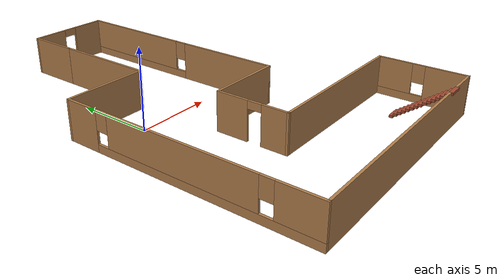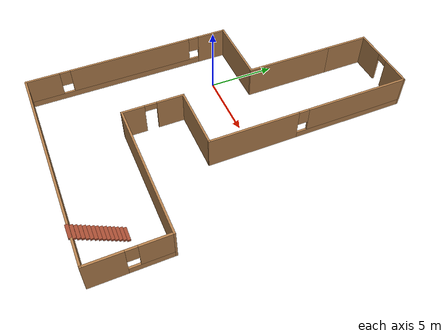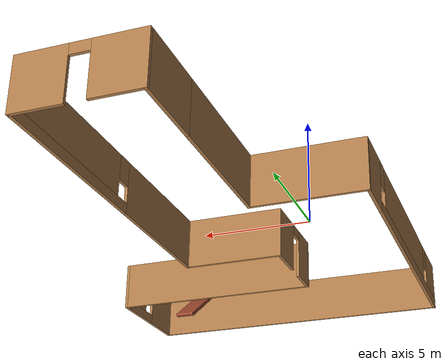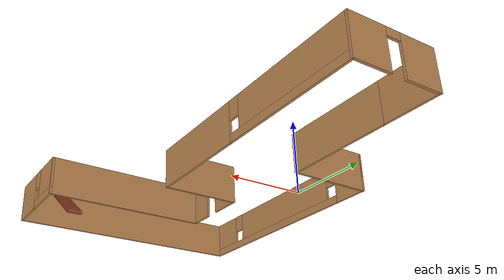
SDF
<?xml version='1.0'?>
<sdf version='1.7'>
  <model name='wip_house.world'>
    <pose>4.96456 -0.72838 0 0 -0 0</pose>
    <link name='Stairs_0'>
      <visual name='Stairs_0_Visual_0'>
        <pose>5.63864 -9.63602 0.083333 0 -0 0</pose>
        <geometry>
          <box>
            <size>1 0.233333 0.166667</size>
          </box>
        </geometry>
        <material>
          <script>
            <uri>file://media/materials/scripts/gazebo.material</uri>
            <name>Gazebo/Bricks</name>
          </script>
          <ambient>1 1 1 1</ambient>
        </material>
        <meta>
          <layer>0</layer>
        </meta>
      </visual>
      <collision name='Stairs_0_Collision_0'>
        <geometry>
          <box>
            <size>1 0.233333 0.166667</size>
          </box>
        </geometry>
        <pose>5.63864 -9.63602 0.083333 0 -0 0</pose>
      </collision>
      <visual name='Stairs_0_Visual_1'>
        <pose>5.63864 -9.86935 0.25 0 -0 0</pose>
        <geometry>
          <box>
            <size>1 0.233333 0.166667</size>
          </box>
        </geometry>
        <material>
          <script>
            <uri>file://media/materials/scripts/gazebo.material</uri>
            <name>Gazebo/Bricks</name>
          </script>
          <ambient>1 1 1 1</ambient>
        </material>
        <meta>
          <layer>0</layer>
        </meta>
      </visual>
      <collision name='Stairs_0_Collision_1'>
        <geometry>
          <box>
            <size>1 0.233333 0.166667</size>
          </box>
        </geometry>
        <pose>5.63864 -9.86935 0.25 0 -0 0</pose>
      </collision>
      <visual name='Stairs_0_Visual_2'>
        <pose>5.63864 -10.1027 0.416667 0 -0 0</pose>
        <geometry>
          <box>
            <size>1 0.233333 0.166667</size>
          </box>
        </geometry>
        <material>
          <script>
            <uri>file://media/materials/scripts/gazebo.material</uri>
            <name>Gazebo/Bricks</name>
          </script>
          <ambient>1 1 1 1</ambient>
        </material>
        <meta>
          <layer>0</layer>
        </meta>
      </visual>
      <collision name='Stairs_0_Collision_2'>
        <geometry>
          <box>
            <size>1 0.233333 0.166667</size>
          </box>
        </geometry>
        <pose>5.63864 -10.1027 0.416667 0 -0 0</pose>
      </collision>
      <visual name='Stairs_0_Visual_3'>
        <pose>5.63864 -10.336 0.583333 0 -0 0</pose>
        <geometry>
          <box>
            <size>1 0.233333 0.166667</size>
          </box>
        </geometry>
        <material>
          <script>
            <uri>file://media/materials/scripts/gazebo.material</uri>
            <name>Gazebo/Bricks</name>
          </script>
          <ambient>1 1 1 1</ambient>
        </material>
        <meta>
          <layer>0</layer>
        </meta>
      </visual>
      <collision name='Stairs_0_Collision_3'>
        <geometry>
          <box>
            <size>1 0.233333 0.166667</size>
          </box>
        </geometry>
        <pose>5.63864 -10.336 0.583333 0 -0 0</pose>
      </collision>
      <visual name='Stairs_0_Visual_4'>
        <pose>5.63864 -10.5694 0.75 0 -0 0</pose>
        <geometry>
          <box>
            <size>1 0.233333 0.166667</size>
          </box>
        </geometry>
        <material>
          <script>
            <uri>file://media/materials/scripts/gazebo.material</uri>
            <name>Gazebo/Bricks</name>
          </script>
          <ambient>1 1 1 1</ambient>
        </material>
        <meta>
          <layer>0</layer>
        </meta>
      </visual>
      <collision name='Stairs_0_Collision_4'>
        <geometry>
          <box>
            <size>1 0.233333 0.166667</size>
          </box>
        </geometry>
        <pose>5.63864 -10.5694 0.75 0 -0 0</pose>
      </collision>
      <visual name='Stairs_0_Visual_5'>
        <pose>5.63864 -10.8027 0.916667 0 -0 0</pose>
        <geometry>
          <box>
            <size>1 0.233333 0.166667</size>
          </box>
        </geometry>
        <material>
          <script>
            <uri>file://media/materials/scripts/gazebo.material</uri>
            <name>Gazebo/Bricks</name>
          </script>
          <ambient>1 1 1 1</ambient>
        </material>
        <meta>
          <layer>0</layer>
        </meta>
      </visual>
      <collision name='Stairs_0_Collision_5'>
        <geometry>
          <box>
            <size>1 0.233333 0.166667</size>
          </box>
        </geometry>
        <pose>5.63864 -10.8027 0.916667 0 -0 0</pose>
      </collision>
      <visual name='Stairs_0_Visual_6'>
        <pose>5.63864 -11.036 1.08333 0 -0 0</pose>
        <geometry>
          <box>
            <size>1 0.233333 0.166667</size>
          </box>
        </geometry>
        <material>
          <script>
            <uri>file://media/materials/scripts/gazebo.material</uri>
            <name>Gazebo/Bricks</name>
          </script>
          <ambient>1 1 1 1</ambient>
        </material>
        <meta>
          <layer>0</layer>
        </meta>
      </visual>
      <collision name='Stairs_0_Collision_6'>
        <geometry>
          <box>
            <size>1 0.233333 0.166667</size>
          </box>
        </geometry>
        <pose>5.63864 -11.036 1.08333 0 -0 0</pose>
      </collision>
      <visual name='Stairs_0_Visual_7'>
        <pose>5.63864 -11.2694 1.25 0 -0 0</pose>
        <geometry>
          <box>
            <size>1 0.233333 0.166667</size>
          </box>
        </geometry>
        <material>
          <script>
            <uri>file://media/materials/scripts/gazebo.material</uri>
            <name>Gazebo/Bricks</name>
          </script>
          <ambient>1 1 1 1</ambient>
        </material>
        <meta>
          <layer>0</layer>
        </meta>
      </visual>
      <collision name='Stairs_0_Collision_7'>
        <geometry>
          <box>
            <size>1 0.233333 0.166667</size>
          </box>
        </geometry>
        <pose>5.63864 -11.2694 1.25 0 -0 0</pose>
      </collision>
      <visual name='Stairs_0_Visual_8'>
        <pose>5.63864 -11.5027 1.41667 0 -0 0</pose>
        <geometry>
          <box>
            <size>1 0.233333 0.166667</size>
          </box>
        </geometry>
        <material>
          <script>
            <uri>file://media/materials/scripts/gazebo.material</uri>
            <name>Gazebo/Bricks</name>
          </script>
          <ambient>1 1 1 1</ambient>
        </material>
        <meta>
          <layer>0</layer>
        </meta>
      </visual>
      <collision name='Stairs_0_Collision_8'>
        <geometry>
          <box>
            <size>1 0.233333 0.166667</size>
          </box>
        </geometry>
        <pose>5.63864 -11.5027 1.41667 0 -0 0</pose>
      </collision>
      <visual name='Stairs_0_Visual_9'>
        <pose>5.63864 -11.736 1.58333 0 -0 0</pose>
        <geometry>
          <box>
            <size>1 0.233333 0.166667</size>
          </box>
        </geometry>
        <material>
          <script>
            <uri>file://media/materials/scripts/gazebo.material</uri>
            <name>Gazebo/Bricks</name>
          </script>
          <ambient>1 1 1 1</ambient>
        </material>
        <meta>
          <layer>0</layer>
        </meta>
      </visual>
      <collision name='Stairs_0_Collision_9'>
        <geometry>
          <box>
            <size>1 0.233333 0.166667</size>
          </box>
        </geometry>
        <pose>5.63864 -11.736 1.58333 0 -0 0</pose>
      </collision>
      <visual name='Stairs_0_Visual_10'>
        <pose>5.63864 -11.9694 1.75 0 -0 0</pose>
        <geometry>
          <box>
            <size>1 0.233333 0.166667</size>
          </box>
        </geometry>
        <material>
          <script>
            <uri>file://media/materials/scripts/gazebo.material</uri>
            <name>Gazebo/Bricks</name>
          </script>
          <ambient>1 1 1 1</ambient>
        </material>
        <meta>
          <layer>0</layer>
        </meta>
      </visual>
      <collision name='Stairs_0_Collision_10'>
        <geometry>
          <box>
            <size>1 0.233333 0.166667</size>
          </box>
        </geometry>
        <pose>5.63864 -11.9694 1.75 0 -0 0</pose>
      </collision>
      <visual name='Stairs_0_Visual_11'>
        <pose>5.63864 -12.2027 1.91667 0 -0 0</pose>
        <geometry>
          <box>
            <size>1 0.233333 0.166667</size>
          </box>
        </geometry>
        <material>
          <script>
            <uri>file://media/materials/scripts/gazebo.material</uri>
            <name>Gazebo/Bricks</name>
          </script>
          <ambient>1 1 1 1</ambient>
        </material>
        <meta>
          <layer>0</layer>
        </meta>
      </visual>
      <collision name='Stairs_0_Collision_11'>
        <geometry>
          <box>
            <size>1 0.233333 0.166667</size>
          </box>
        </geometry>
        <pose>5.63864 -12.2027 1.91667 0 -0 0</pose>
      </collision>
      <visual name='Stairs_0_Visual_12'>
        <pose>5.63864 -12.436 2.08333 0 -0 0</pose>
        <geometry>
          <box>
            <size>1 0.233333 0.166667</size>
          </box>
        </geometry>
        <material>
          <script>
            <uri>file://media/materials/scripts/gazebo.material</uri>
            <name>Gazebo/Bricks</name>
          </script>
          <ambient>1 1 1 1</ambient>
        </material>
        <meta>
          <layer>0</layer>
        </meta>
      </visual>
      <collision name='Stairs_0_Collision_12'>
        <geometry>
          <box>
            <size>1 0.233333 0.166667</size>
          </box>
        </geometry>
        <pose>5.63864 -12.436 2.08333 0 -0 0</pose>
      </collision>
      <visual name='Stairs_0_Visual_13'>
        <pose>5.63864 -12.6694 2.25 0 -0 0</pose>
        <geometry>
          <box>
            <size>1 0.233333 0.166667</size>
          </box>
        </geometry>
        <material>
          <script>
            <uri>file://media/materials/scripts/gazebo.material</uri>
            <name>Gazebo/Bricks</name>
          </script>
          <ambient>1 1 1 1</ambient>
        </material>
        <meta>
          <layer>0</layer>
        </meta>
      </visual>
      <collision name='Stairs_0_Collision_13'>
        <geometry>
          <box>
            <size>1 0.233333 0.166667</size>
          </box>
        </geometry>
        <pose>5.63864 -12.6694 2.25 0 -0 0</pose>
      </collision>
      <visual name='Stairs_0_Visual_14'>
        <pose>5.63864 -12.9027 2.41667 0 -0 0</pose>
        <geometry>
          <box>
            <size>1 0.233333 0.166667</size>
          </box>
        </geometry>
        <material>
          <script>
            <uri>file://media/materials/scripts/gazebo.material</uri>
            <name>Gazebo/Bricks</name>
          </script>
          <ambient>1 1 1 1</ambient>
        </material>
        <meta>
          <layer>0</layer>
        </meta>
      </visual>
      <collision name='Stairs_0_Collision_14'>
        <geometry>
          <box>
            <size>1 0.233333 0.166667</size>
          </box>
        </geometry>
        <pose>5.63864 -12.9027 2.41667 0 -0 0</pose>
      </collision>
    </link>
    <link name='Wall_11'>
      <pose>-8.175 -4.93065 0 0 -0 -1.5708</pose>
      <visual name='Wall_11_Visual_0'>
        <pose>-6.85483 0 1.25 0 -0 0</pose>
        <geometry>
          <box>
            <size>2.29034 0.15 2.5</size>
          </box>
        </geometry>
        <material>
          <script>
            <uri>file://media/materials/scripts/gazebo.material</uri>
            <name>Gazebo/Wood</name>
          </script>
          <ambient>1 1 1 1</ambient>
        </material>
        <meta>
          <layer>0</layer>
        </meta>
      </visual>
      <collision name='Wall_11_Collision_0'>
        <geometry>
          <box>
            <size>2.29034 0.15 2.5</size>
          </box>
        </geometry>
        <pose>-6.85483 0 1.25 0 -0 0</pose>
      </collision>
      <visual name='Wall_11_Visual_1'>
        <pose>1.14517 0 0.25 0 -0 0</pose>
        <geometry>
          <box>
            <size>13.7097 0.15 0.5</size>
          </box>
        </geometry>
        <material>
          <script>
            <uri>file://media/materials/scripts/gazebo.material</uri>
            <name>Gazebo/Wood</name>
          </script>
          <ambient>1 1 1 1</ambient>
        </material>
        <meta>
          <layer>0</layer>
        </meta>
      </visual>
      <collision name='Wall_11_Collision_1'>
        <geometry>
          <box>
            <size>13.7097 0.15 0.5</size>
          </box>
        </geometry>
        <pose>1.14517 0 0.25 0 -0 0</pose>
      </collision>
      <visual name='Wall_11_Visual_2'>
        <pose>-0.144391 0 1.5 0 -0 0</pose>
        <geometry>
          <box>
            <size>9.53053 0.15 2</size>
          </box>
        </geometry>
        <material>
          <script>
            <uri>file://media/materials/scripts/gazebo.material</uri>
            <name>Gazebo/Wood</name>
          </script>
          <ambient>1 1 1 1</ambient>
        </material>
        <meta>
          <layer>0</layer>
        </meta>
      </visual>
      <collision name='Wall_11_Collision_2'>
        <geometry>
          <box>
            <size>9.53053 0.15 2</size>
          </box>
        </geometry>
        <pose>-0.144391 0 1.5 0 -0 0</pose>
      </collision>
      <visual name='Wall_11_Visual_3'>
        <pose>6.71044 0 1.5 0 -0 0</pose>
        <geometry>
          <box>
            <size>2.57912 0.15 2</size>
          </box>
        </geometry>
        <material>
          <script>
            <uri>file://media/materials/scripts/gazebo.material</uri>
            <name>Gazebo/Wood</name>
          </script>
          <ambient>1 1 1 1</ambient>
        </material>
        <meta>
          <layer>0</layer>
        </meta>
      </visual>
      <collision name='Wall_11_Collision_3'>
        <geometry>
          <box>
            <size>2.57912 0.15 2</size>
          </box>
        </geometry>
        <pose>6.71044 0 1.5 0 -0 0</pose>
      </collision>
      <visual name='Wall_11_Visual_4'>
        <pose>-5.30966 0 1.9 0 -0 0</pose>
        <geometry>
          <box>
            <size>0.8 0.15 1.2</size>
          </box>
        </geometry>
        <material>
          <script>
            <uri>file://media/materials/scripts/gazebo.material</uri>
            <name>Gazebo/Wood</name>
          </script>
          <ambient>1 1 1 1</ambient>
        </material>
        <meta>
          <layer>0</layer>
        </meta>
      </visual>
      <collision name='Wall_11_Collision_4'>
        <geometry>
          <box>
            <size>0.8 0.15 1.2</size>
          </box>
        </geometry>
        <pose>-5.30966 0 1.9 0 -0 0</pose>
      </collision>
      <visual name='Wall_11_Visual_5'>
        <pose>5.02088 0 1.9 0 -0 0</pose>
        <geometry>
          <box>
            <size>0.8 0.15 1.2</size>
          </box>
        </geometry>
        <material>
          <script>
            <uri>file://media/materials/scripts/gazebo.material</uri>
            <name>Gazebo/Wood</name>
          </script>
          <ambient>1 1 1 1</ambient>
        </material>
        <meta>
          <layer>0</layer>
        </meta>
      </visual>
      <collision name='Wall_11_Collision_5'>
        <geometry>
          <box>
            <size>0.8 0.15 1.2</size>
          </box>
        </geometry>
        <pose>5.02088 0 1.9 0 -0 0</pose>
      </collision>
    </link>
    <link name='Wall_13'>
      <collision name='Wall_13_Collision'>
        <geometry>
          <box>
            <size>16.5 0.15 2.5</size>
          </box>
        </geometry>
        <pose>0 0 1.25 0 -0 0</pose>
      </collision>
      <visual name='Wall_13_Visual'>
        <pose>0 0 1.25 0 -0 0</pose>
        <geometry>
          <box>
            <size>16.5 0.15 2.5</size>
          </box>
        </geometry>
        <material>
          <script>
            <uri>file://media/materials/scripts/gazebo.material</uri>
            <name>Gazebo/Wood</name>
          </script>
          <ambient>1 1 1 1</ambient>
        </material>
        <meta>
          <layer>0</layer>
        </meta>
      </visual>
      <pose>0 -12.8556 0 0 -0 0</pose>
    </link>
    <link name='Wall_14'>
      <pose>8.175 -10.0556 0 0 -0 1.5708</pose>
      <visual name='Wall_14_Visual_0'>
        <pose>-1.55006 0 1.25 0 -0 0</pose>
        <geometry>
          <box>
            <size>2.64988 0.15 2.5</size>
          </box>
        </geometry>
        <material>
          <script>
            <uri>file://media/materials/scripts/gazebo.material</uri>
            <name>Gazebo/Wood</name>
          </script>
          <ambient>1 1 1 1</ambient>
        </material>
        <meta>
          <layer>0</layer>
        </meta>
      </visual>
      <collision name='Wall_14_Collision_0'>
        <geometry>
          <box>
            <size>2.64988 0.15 2.5</size>
          </box>
        </geometry>
        <pose>-1.55006 0 1.25 0 -0 0</pose>
      </collision>
      <visual name='Wall_14_Visual_1'>
        <pose>1.32494 0 0.25 0 -0 0</pose>
        <geometry>
          <box>
            <size>3.10012 0.15 0.5</size>
          </box>
        </geometry>
        <material>
          <script>
            <uri>file://media/materials/scripts/gazebo.material</uri>
            <name>Gazebo/Wood</name>
          </script>
          <ambient>1 1 1 1</ambient>
        </material>
        <meta>
          <layer>0</layer>
        </meta>
      </visual>
      <collision name='Wall_14_Collision_1'>
        <geometry>
          <box>
            <size>3.10012 0.15 0.5</size>
          </box>
        </geometry>
        <pose>1.32494 0 0.25 0 -0 0</pose>
      </collision>
      <visual name='Wall_14_Visual_2'>
        <pose>1.72494 0 1.5 0 -0 0</pose>
        <geometry>
          <box>
            <size>2.30012 0.15 2</size>
          </box>
        </geometry>
        <material>
          <script>
            <uri>file://media/materials/scripts/gazebo.material</uri>
            <name>Gazebo/Wood</name>
          </script>
          <ambient>1 1 1 1</ambient>
        </material>
        <meta>
          <layer>0</layer>
        </meta>
      </visual>
      <collision name='Wall_14_Collision_2'>
        <geometry>
          <box>
            <size>2.30012 0.15 2</size>
          </box>
        </geometry>
        <pose>1.72494 0 1.5 0 -0 0</pose>
      </collision>
      <visual name='Wall_14_Visual_3'>
        <pose>0.174883 0 1.9 0 -0 0</pose>
        <geometry>
          <box>
            <size>0.8 0.15 1.2</size>
          </box>
        </geometry>
        <material>
          <script>
            <uri>file://media/materials/scripts/gazebo.material</uri>
            <name>Gazebo/Wood</name>
          </script>
          <ambient>1 1 1 1</ambient>
        </material>
        <meta>
          <layer>0</layer>
        </meta>
      </visual>
      <collision name='Wall_14_Collision_3'>
        <geometry>
          <box>
            <size>0.8 0.15 1.2</size>
          </box>
        </geometry>
        <pose>0.174883 0 1.9 0 -0 0</pose>
      </collision>
    </link>
    <link name='Wall_15'>
      <collision name='Wall_15_Collision'>
        <geometry>
          <box>
            <size>10.75 0.15 2.5</size>
          </box>
        </geometry>
        <pose>0 0 1.25 0 -0 0</pose>
      </collision>
      <visual name='Wall_15_Visual'>
        <pose>0 0 1.25 0 -0 0</pose>
        <geometry>
          <box>
            <size>10.75 0.15 2.5</size>
          </box>
        </geometry>
        <material>
          <script>
            <uri>file://media/materials/scripts/gazebo.material</uri>
            <name>Gazebo/Wood</name>
          </script>
          <ambient>1 1 1 1</ambient>
        </material>
        <meta>
          <layer>0</layer>
        </meta>
      </visual>
      <pose>2.875 -7.25565 0 0 -0 3.14159</pose>
    </link>
    <link name='Wall_16'>
      <pose>-2.425 -4.95565 0 0 -0 1.5708</pose>
      <visual name='Wall_16_Visual_0'>
        <pose>-1.50448 0 1.25 0 -0 0</pose>
        <geometry>
          <box>
            <size>1.74105 0.15 2.5</size>
          </box>
        </geometry>
        <material>
          <script>
            <uri>file://media/materials/scripts/gazebo.material</uri>
            <name>Gazebo/Wood</name>
          </script>
          <ambient>1 1 1 1</ambient>
        </material>
        <meta>
          <layer>0</layer>
        </meta>
      </visual>
      <collision name='Wall_16_Collision_0'>
        <geometry>
          <box>
            <size>1.74105 0.15 2.5</size>
          </box>
        </geometry>
        <pose>-1.50448 0 1.25 0 -0 0</pose>
      </collision>
      <visual name='Wall_16_Visual_1'>
        <pose>1.32052 0 1.25 0 -0 0</pose>
        <geometry>
          <box>
            <size>2.10895 0.15 2.5</size>
          </box>
        </geometry>
        <material>
          <script>
            <uri>file://media/materials/scripts/gazebo.material</uri>
            <name>Gazebo/Wood</name>
          </script>
          <ambient>1 1 1 1</ambient>
        </material>
        <meta>
          <layer>0</layer>
        </meta>
      </visual>
      <collision name='Wall_16_Collision_1'>
        <geometry>
          <box>
            <size>2.10895 0.15 2.5</size>
          </box>
        </geometry>
        <pose>1.32052 0 1.25 0 -0 0</pose>
      </collision>
      <visual name='Wall_16_Visual_2'>
        <pose>-0.183949 0 2.25 0 -0 0</pose>
        <geometry>
          <box>
            <size>0.9 0.15 0.5</size>
          </box>
        </geometry>
        <material>
          <script>
            <uri>file://media/materials/scripts/gazebo.material</uri>
            <name>Gazebo/Wood</name>
          </script>
          <ambient>1 1 1 1</ambient>
        </material>
        <meta>
          <layer>0</layer>
        </meta>
      </visual>
      <collision name='Wall_16_Collision_2'>
        <geometry>
          <box>
            <size>0.9 0.15 0.5</size>
          </box>
        </geometry>
        <pose>-0.183949 0 2.25 0 -0 0</pose>
      </collision>
    </link>
    <link name='Wall_17'>
      <collision name='Wall_17_Collision'>
        <geometry>
          <box>
            <size>5 0.15 2.5</size>
          </box>
        </geometry>
        <pose>0 0 1.25 0 -0 0</pose>
      </collision>
      <visual name='Wall_17_Visual'>
        <pose>0 0 1.25 0 -0 0</pose>
        <geometry>
          <box>
            <size>5 0.15 2.5</size>
          </box>
        </geometry>
        <material>
          <script>
            <uri>file://media/materials/scripts/gazebo.material</uri>
            <name>Gazebo/Wood</name>
          </script>
          <ambient>1 1 1 1</ambient>
        </material>
        <meta>
          <layer>0</layer>
        </meta>
      </visual>
      <pose>0 -2.65565 0 0 -0 0</pose>
    </link>
    <link name='Wall_18'>
      <pose>2.425 5.14435 0 0 -0 1.5708</pose>
      <visual name='Wall_18_Visual_0'>
        <pose>-4.43284 0 1.25 0 -0 0</pose>
        <geometry>
          <box>
            <size>6.88432 0.15 2.5</size>
          </box>
        </geometry>
        <material>
          <script>
            <uri>file://media/materials/scripts/gazebo.material</uri>
            <name>Gazebo/Wood</name>
          </script>
          <ambient>1 1 1 1</ambient>
        </material>
        <meta>
          <layer>0</layer>
        </meta>
      </visual>
      <collision name='Wall_18_Collision_0'>
        <geometry>
          <box>
            <size>6.88432 0.15 2.5</size>
          </box>
        </geometry>
        <pose>-4.43284 0 1.25 0 -0 0</pose>
      </collision>
      <visual name='Wall_18_Visual_1'>
        <pose>3.44216 0 0.25 0 -0 0</pose>
        <geometry>
          <box>
            <size>8.86568 0.15 0.5</size>
          </box>
        </geometry>
        <material>
          <script>
            <uri>file://media/materials/scripts/gazebo.material</uri>
            <name>Gazebo/Wood</name>
          </script>
          <ambient>1 1 1 1</ambient>
        </material>
        <meta>
          <layer>0</layer>
        </meta>
      </visual>
      <collision name='Wall_18_Collision_1'>
        <geometry>
          <box>
            <size>8.86568 0.15 0.5</size>
          </box>
        </geometry>
        <pose>3.44216 0 0.25 0 -0 0</pose>
      </collision>
      <visual name='Wall_18_Visual_2'>
        <pose>3.84216 0 1.5 0 -0 0</pose>
        <geometry>
          <box>
            <size>8.06568 0.15 2</size>
          </box>
        </geometry>
        <material>
          <script>
            <uri>file://media/materials/scripts/gazebo.material</uri>
            <name>Gazebo/Wood</name>
          </script>
          <ambient>1 1 1 1</ambient>
        </material>
        <meta>
          <layer>0</layer>
        </meta>
      </visual>
      <collision name='Wall_18_Collision_2'>
        <geometry>
          <box>
            <size>8.06568 0.15 2</size>
          </box>
        </geometry>
        <pose>3.84216 0 1.5 0 -0 0</pose>
      </collision>
      <visual name='Wall_18_Visual_3'>
        <pose>-0.590678 0 1.9 0 -0 0</pose>
        <geometry>
          <box>
            <size>0.8 0.15 1.2</size>
          </box>
        </geometry>
        <material>
          <script>
            <uri>file://media/materials/scripts/gazebo.material</uri>
            <name>Gazebo/Wood</name>
          </script>
          <ambient>1 1 1 1</ambient>
        </material>
        <meta>
          <layer>0</layer>
        </meta>
      </visual>
      <collision name='Wall_18_Collision_3'>
        <geometry>
          <box>
            <size>0.8 0.15 1.2</size>
          </box>
        </geometry>
        <pose>-0.590678 0 1.9 0 -0 0</pose>
      </collision>
    </link>
    <link name='Wall_19'>
      <pose>-0.25 12.9444 0 0 -0 3.14159</pose>
      <visual name='Wall_19_Visual_0'>
        <pose>-1.59922 0 1.25 0 -0 0</pose>
        <geometry>
          <box>
            <size>2.30155 0.15 2.5</size>
          </box>
        </geometry>
        <material>
          <script>
            <uri>file://media/materials/scripts/gazebo.material</uri>
            <name>Gazebo/Wood</name>
          </script>
          <ambient>1 1 1 1</ambient>
        </material>
        <meta>
          <layer>0</layer>
        </meta>
      </visual>
      <collision name='Wall_19_Collision_0'>
        <geometry>
          <box>
            <size>2.30155 0.15 2.5</size>
          </box>
        </geometry>
        <pose>-1.59922 0 1.25 0 -0 0</pose>
      </collision>
      <visual name='Wall_19_Visual_1'>
        <pose>1.60078 0 1.25 0 -0 0</pose>
        <geometry>
          <box>
            <size>2.29845 0.15 2.5</size>
          </box>
        </geometry>
        <material>
          <script>
            <uri>file://media/materials/scripts/gazebo.material</uri>
            <name>Gazebo/Wood</name>
          </script>
          <ambient>1 1 1 1</ambient>
        </material>
        <meta>
          <layer>0</layer>
        </meta>
      </visual>
      <collision name='Wall_19_Collision_1'>
        <geometry>
          <box>
            <size>2.29845 0.15 2.5</size>
          </box>
        </geometry>
        <pose>1.60078 0 1.25 0 -0 0</pose>
      </collision>
      <visual name='Wall_19_Visual_2'>
        <pose>0.00155 0 2.25 0 -0 0</pose>
        <geometry>
          <box>
            <size>0.9 0.15 0.5</size>
          </box>
        </geometry>
        <material>
          <script>
            <uri>file://media/materials/scripts/gazebo.material</uri>
            <name>Gazebo/Wood</name>
          </script>
          <ambient>1 1 1 1</ambient>
        </material>
        <meta>
          <layer>0</layer>
        </meta>
      </visual>
      <collision name='Wall_19_Collision_2'>
        <geometry>
          <box>
            <size>0.9 0.15 0.5</size>
          </box>
        </geometry>
        <pose>0.00155 0 2.25 0 -0 0</pose>
      </collision>
    </link>
    <link name='Wall_20'>
      <collision name='Wall_20_Collision'>
        <geometry>
          <box>
            <size>3.5 0.15 2.5</size>
          </box>
        </geometry>
        <pose>0 0 1.25 0 -0 0</pose>
      </collision>
      <visual name='Wall_20_Visual'>
        <pose>0 0 1.25 0 -0 0</pose>
        <geometry>
          <box>
            <size>3.5 0.15 2.5</size>
          </box>
        </geometry>
        <material>
          <script>
            <uri>file://media/materials/scripts/gazebo.material</uri>
            <name>Gazebo/Wood</name>
          </script>
          <ambient>1 1 1 1</ambient>
        </material>
        <meta>
          <layer>0</layer>
        </meta>
      </visual>
      <pose>-2.925 11.2694 0 0 -0 -1.5708</pose>
    </link>
    <link name='Wall_21'>
      <collision name='Wall_21_Collision'>
        <geometry>
          <box>
            <size>6.75 0.15 2.5</size>
          </box>
        </geometry>
        <pose>0 0 1.25 0 -0 0</pose>
      </collision>
      <visual name='Wall_21_Visual'>
        <pose>0 0 1.25 0 -0 0</pose>
        <geometry>
          <box>
            <size>6.75 0.15 2.5</size>
          </box>
        </geometry>
        <material>
          <script>
            <uri>file://media/materials/scripts/gazebo.material</uri>
            <name>Gazebo/Wood</name>
          </script>
          <ambient>1 1 1 1</ambient>
        </material>
        <meta>
          <layer>0</layer>
        </meta>
      </visual>
      <pose>-2.925 6.29435 0 0 -0 -1.5708</pose>
    </link>
    <link name='Wall_9'>
      <collision name='Wall_9_Collision'>
        <geometry>
          <box>
            <size>5.25 0.15 2.5</size>
          </box>
        </geometry>
        <pose>0 0 1.25 0 -0 0</pose>
      </collision>
      <visual name='Wall_9_Visual'>
        <pose>0 0 1.25 0 -0 0</pose>
        <geometry>
          <box>
            <size>5.25 0.15 2.5</size>
          </box>
        </geometry>
        <material>
          <script>
            <uri>file://media/materials/scripts/gazebo.material</uri>
            <name>Gazebo/Wood</name>
          </script>
          <ambient>1 1 1 1</ambient>
        </material>
        <meta>
          <layer>0</layer>
        </meta>
      </visual>
      <pose>-5.625 2.99435 0 0 -0 0</pose>
    </link>
    <static>1</static>
  </model>
</sdf>
